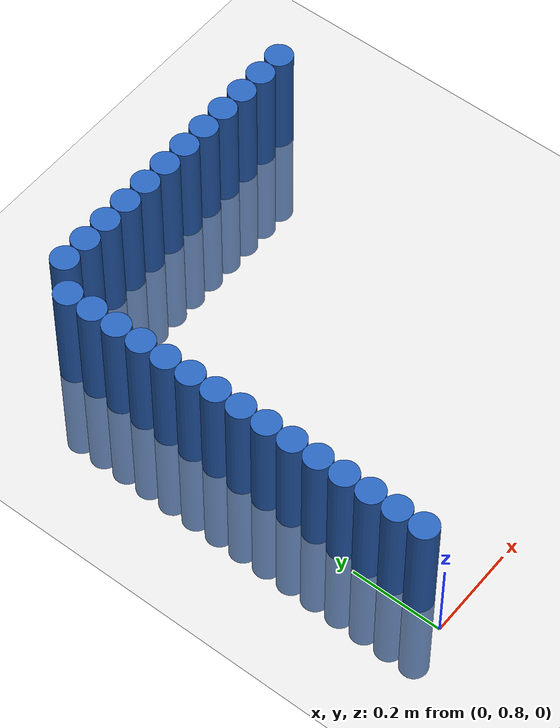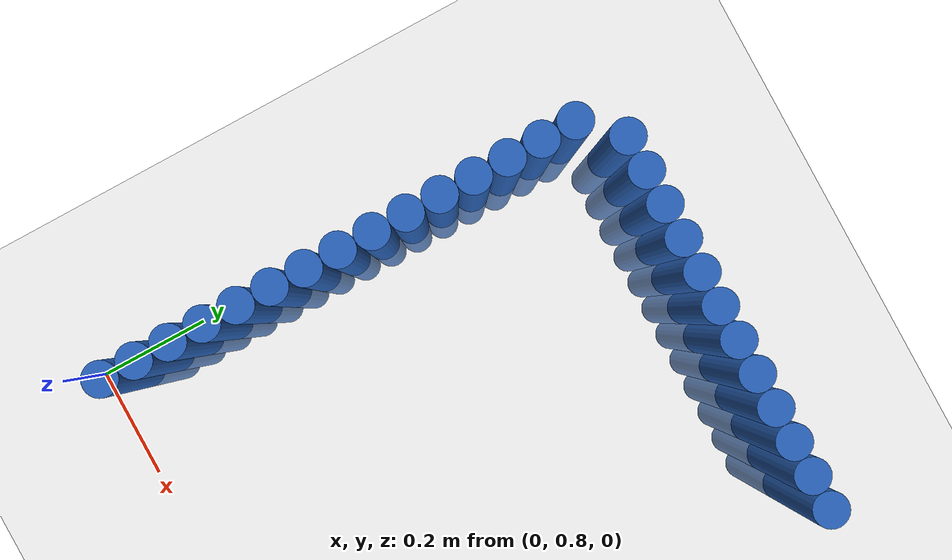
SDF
<sdf version="1.6">
 <world name="default">
  <model name="ground_plane">
   <static>1</static>
   <link name="link">
    <collision name="collision">
     <geometry><plane><normal>0 0 1</normal><size>100 100</size></plane></geometry>
     <surface><friction><ode><mu>100</mu><mu2>50</mu2></ode></friction></surface>
    </collision>
    <visual name="visual">
     <cast_shadows>0</cast_shadows>
     <geometry><plane><normal>0 0 1</normal><size>100 100</size></plane></geometry>
     <material>
      <script><uri>file://media/materials/scripts/gazebo.material</uri><name>Gazebo/Grey</name></script>
     </material>
    </visual>
   </link>
  </model>
  <model name="unit_cylinder_14">
   <static>1</static>
   <pose>0.030000 0.870000 0.000000 0.000000 0.000000 0.000000</pose>
   <link name="link">
    <inertial>
     <mass>1</mass>
     <inertia><ixx>0.145833</ixx><ixy>0</ixy><ixz>0</ixz><iyy>0.145833</iyy><iyz>0</iyz><izz>0.125</izz></inertia>
    </inertial>
    <collision name="collision">
     <geometry><cylinder><radius>0.030000</radius><length>0.5</length></cylinder></geometry>
    </collision>
    <visual name="visual">
     <geometry><cylinder><radius>0.030000</radius><length>0.5</length></cylinder></geometry>
     <material>
      <ambient>0.152000 0.379000 0.720000 1</ambient>
      <diffuse>0.152000 0.379000 0.720000 1</diffuse>
     </material>
     <material>
      <script><name>Gazebo/Grey</name><uri>file://media/materials/scripts/gazebo.material</uri></script>
     </material>
    </visual>
   </link>
  </model>
  <model name="unit_cylinder_15">
   <static>1</static>
   <pose>0.030000 0.930000 0.000000 0.000000 0.000000 0.000000</pose>
   <link name="link">
    <inertial>
     <mass>1</mass>
     <inertia><ixx>0.145833</ixx><ixy>0</ixy><ixz>0</ixz><iyy>0.145833</iyy><iyz>0</iyz><izz>0.125</izz></inertia>
    </inertial>
    <collision name="collision">
     <geometry><cylinder><radius>0.030000</radius><length>0.5</length></cylinder></geometry>
    </collision>
    <visual name="visual">
     <geometry><cylinder><radius>0.030000</radius><length>0.5</length></cylinder></geometry>
     <material>
      <ambient>0.152000 0.379000 0.720000 1</ambient>
      <diffuse>0.152000 0.379000 0.720000 1</diffuse>
     </material>
     <material>
      <script><name>Gazebo/Grey</name><uri>file://media/materials/scripts/gazebo.material</uri></script>
     </material>
    </visual>
   </link>
  </model>
  <model name="unit_cylinder_16">
   <static>1</static>
   <pose>0.030000 0.990000 0.000000 0.000000 0.000000 0.000000</pose>
   <link name="link">
    <inertial>
     <mass>1</mass>
     <inertia><ixx>0.145833</ixx><ixy>0</ixy><ixz>0</ixz><iyy>0.145833</iyy><iyz>0</iyz><izz>0.125</izz></inertia>
    </inertial>
    <collision name="collision">
     <geometry><cylinder><radius>0.030000</radius><length>0.5</length></cylinder></geometry>
    </collision>
    <visual name="visual">
     <geometry><cylinder><radius>0.030000</radius><length>0.5</length></cylinder></geometry>
     <material>
      <ambient>0.152000 0.379000 0.720000 1</ambient>
      <diffuse>0.152000 0.379000 0.720000 1</diffuse>
     </material>
     <material>
      <script><name>Gazebo/Grey</name><uri>file://media/materials/scripts/gazebo.material</uri></script>
     </material>
    </visual>
   </link>
  </model>
  <model name="unit_cylinder_17">
   <static>1</static>
   <pose>0.030000 1.050000 0.000000 0.000000 0.000000 0.000000</pose>
   <link name="link">
    <inertial>
     <mass>1</mass>
     <inertia><ixx>0.145833</ixx><ixy>0</ixy><ixz>0</ixz><iyy>0.145833</iyy><iyz>0</iyz><izz>0.125</izz></inertia>
    </inertial>
    <collision name="collision">
     <geometry><cylinder><radius>0.030000</radius><length>0.5</length></cylinder></geometry>
    </collision>
    <visual name="visual">
     <geometry><cylinder><radius>0.030000</radius><length>0.5</length></cylinder></geometry>
     <material>
      <ambient>0.152000 0.379000 0.720000 1</ambient>
      <diffuse>0.152000 0.379000 0.720000 1</diffuse>
     </material>
     <material>
      <script><name>Gazebo/Grey</name><uri>file://media/materials/scripts/gazebo.material</uri></script>
     </material>
    </visual>
   </link>
  </model>
  <model name="unit_cylinder_18">
   <static>1</static>
   <pose>0.030000 1.110000 0.000000 0.000000 0.000000 0.000000</pose>
   <link name="link">
    <inertial>
     <mass>1</mass>
     <inertia><ixx>0.145833</ixx><ixy>0</ixy><ixz>0</ixz><iyy>0.145833</iyy><iyz>0</iyz><izz>0.125</izz></inertia>
    </inertial>
    <collision name="collision">
     <geometry><cylinder><radius>0.030000</radius><length>0.5</length></cylinder></geometry>
    </collision>
    <visual name="visual">
     <geometry><cylinder><radius>0.030000</radius><length>0.5</length></cylinder></geometry>
     <material>
      <ambient>0.152000 0.379000 0.720000 1</ambient>
      <diffuse>0.152000 0.379000 0.720000 1</diffuse>
     </material>
     <material>
      <script><name>Gazebo/Grey</name><uri>file://media/materials/scripts/gazebo.material</uri></script>
     </material>
    </visual>
   </link>
  </model>
  <model name="unit_cylinder_19">
   <static>1</static>
   <pose>0.030000 1.170000 0.000000 0.000000 0.000000 0.000000</pose>
   <link name="link">
    <inertial>
     <mass>1</mass>
     <inertia><ixx>0.145833</ixx><ixy>0</ixy><ixz>0</ixz><iyy>0.145833</iyy><iyz>0</iyz><izz>0.125</izz></inertia>
    </inertial>
    <collision name="collision">
     <geometry><cylinder><radius>0.030000</radius><length>0.5</length></cylinder></geometry>
    </collision>
    <visual name="visual">
     <geometry><cylinder><radius>0.030000</radius><length>0.5</length></cylinder></geometry>
     <material>
      <ambient>0.152000 0.379000 0.720000 1</ambient>
      <diffuse>0.152000 0.379000 0.720000 1</diffuse>
     </material>
     <material>
      <script><name>Gazebo/Grey</name><uri>file://media/materials/scripts/gazebo.material</uri></script>
     </material>
    </visual>
   </link>
  </model>
  <model name="unit_cylinder_20">
   <static>1</static>
   <pose>0.030000 1.230000 0.000000 0.000000 0.000000 0.000000</pose>
   <link name="link">
    <inertial>
     <mass>1</mass>
     <inertia><ixx>0.145833</ixx><ixy>0</ixy><ixz>0</ixz><iyy>0.145833</iyy><iyz>0</iyz><izz>0.125</izz></inertia>
    </inertial>
    <collision name="collision">
     <geometry><cylinder><radius>0.030000</radius><length>0.5</length></cylinder></geometry>
    </collision>
    <visual name="visual">
     <geometry><cylinder><radius>0.030000</radius><length>0.5</length></cylinder></geometry>
     <material>
      <ambient>0.152000 0.379000 0.720000 1</ambient>
      <diffuse>0.152000 0.379000 0.720000 1</diffuse>
     </material>
     <material>
      <script><name>Gazebo/Grey</name><uri>file://media/materials/scripts/gazebo.material</uri></script>
     </material>
    </visual>
   </link>
  </model>
  <model name="unit_cylinder_21">
   <static>1</static>
   <pose>0.030000 1.290000 0.000000 0.000000 0.000000 0.000000</pose>
   <link name="link">
    <inertial>
     <mass>1</mass>
     <inertia><ixx>0.145833</ixx><ixy>0</ixy><ixz>0</ixz><iyy>0.145833</iyy><iyz>0</iyz><izz>0.125</izz></inertia>
    </inertial>
    <collision name="collision">
     <geometry><cylinder><radius>0.030000</radius><length>0.5</length></cylinder></geometry>
    </collision>
    <visual name="visual">
     <geometry><cylinder><radius>0.030000</radius><length>0.5</length></cylinder></geometry>
     <material>
      <ambient>0.152000 0.379000 0.720000 1</ambient>
      <diffuse>0.152000 0.379000 0.720000 1</diffuse>
     </material>
     <material>
      <script><name>Gazebo/Grey</name><uri>file://media/materials/scripts/gazebo.material</uri></script>
     </material>
    </visual>
   </link>
  </model>
  <model name="unit_cylinder_22">
   <static>1</static>
   <pose>0.030000 1.350000 0.000000 0.000000 0.000000 0.000000</pose>
   <link name="link">
    <inertial>
     <mass>1</mass>
     <inertia><ixx>0.145833</ixx><ixy>0</ixy><ixz>0</ixz><iyy>0.145833</iyy><iyz>0</iyz><izz>0.125</izz></inertia>
    </inertial>
    <collision name="collision">
     <geometry><cylinder><radius>0.030000</radius><length>0.5</length></cylinder></geometry>
    </collision>
    <visual name="visual">
     <geometry><cylinder><radius>0.030000</radius><length>0.5</length></cylinder></geometry>
     <material>
      <ambient>0.152000 0.379000 0.720000 1</ambient>
      <diffuse>0.152000 0.379000 0.720000 1</diffuse>
     </material>
     <material>
      <script><name>Gazebo/Grey</name><uri>file://media/materials/scripts/gazebo.material</uri></script>
     </material>
    </visual>
   </link>
  </model>
  <model name="unit_cylinder_23">
   <static>1</static>
   <pose>0.030000 1.410000 0.000000 0.000000 0.000000 0.000000</pose>
   <link name="link">
    <inertial>
     <mass>1</mass>
     <inertia><ixx>0.145833</ixx><ixy>0</ixy><ixz>0</ixz><iyy>0.145833</iyy><iyz>0</iyz><izz>0.125</izz></inertia>
    </inertial>
    <collision name="collision">
     <geometry><cylinder><radius>0.030000</radius><length>0.5</length></cylinder></geometry>
    </collision>
    <visual name="visual">
     <geometry><cylinder><radius>0.030000</radius><length>0.5</length></cylinder></geometry>
     <material>
      <ambient>0.152000 0.379000 0.720000 1</ambient>
      <diffuse>0.152000 0.379000 0.720000 1</diffuse>
     </material>
     <material>
      <script><name>Gazebo/Grey</name><uri>file://media/materials/scripts/gazebo.material</uri></script>
     </material>
    </visual>
   </link>
  </model>
  <model name="unit_cylinder_24">
   <static>1</static>
   <pose>0.030000 1.470000 0.000000 0.000000 0.000000 0.000000</pose>
   <link name="link">
    <inertial>
     <mass>1</mass>
     <inertia><ixx>0.145833</ixx><ixy>0</ixy><ixz>0</ixz><iyy>0.145833</iyy><iyz>0</iyz><izz>0.125</izz></inertia>
    </inertial>
    <collision name="collision">
     <geometry><cylinder><radius>0.030000</radius><length>0.5</length></cylinder></geometry>
    </collision>
    <visual name="visual">
     <geometry><cylinder><radius>0.030000</radius><length>0.5</length></cylinder></geometry>
     <material>
      <ambient>0.152000 0.379000 0.720000 1</ambient>
      <diffuse>0.152000 0.379000 0.720000 1</diffuse>
     </material>
     <material>
      <script><name>Gazebo/Grey</name><uri>file://media/materials/scripts/gazebo.material</uri></script>
     </material>
    </visual>
   </link>
  </model>
  <model name="unit_cylinder_25">
   <static>1</static>
   <pose>0.030000 1.530000 0.000000 0.000000 0.000000 0.000000</pose>
   <link name="link">
    <inertial>
     <mass>1</mass>
     <inertia><ixx>0.145833</ixx><ixy>0</ixy><ixz>0</ixz><iyy>0.145833</iyy><iyz>0</iyz><izz>0.125</izz></inertia>
    </inertial>
    <collision name="collision">
     <geometry><cylinder><radius>0.030000</radius><length>0.5</length></cylinder></geometry>
    </collision>
    <visual name="visual">
     <geometry><cylinder><radius>0.030000</radius><length>0.5</length></cylinder></geometry>
     <material>
      <ambient>0.152000 0.379000 0.720000 1</ambient>
      <diffuse>0.152000 0.379000 0.720000 1</diffuse>
     </material>
     <material>
      <script><name>Gazebo/Grey</name><uri>file://media/materials/scripts/gazebo.material</uri></script>
     </material>
    </visual>
   </link>
  </model>
  <model name="unit_cylinder_26">
   <static>1</static>
   <pose>0.030000 1.590000 0.000000 0.000000 0.000000 0.000000</pose>
   <link name="link">
    <inertial>
     <mass>1</mass>
     <inertia><ixx>0.145833</ixx><ixy>0</ixy><ixz>0</ixz><iyy>0.145833</iyy><iyz>0</iyz><izz>0.125</izz></inertia>
    </inertial>
    <collision name="collision">
     <geometry><cylinder><radius>0.030000</radius><length>0.5</length></cylinder></geometry>
    </collision>
    <visual name="visual">
     <geometry><cylinder><radius>0.030000</radius><length>0.5</length></cylinder></geometry>
     <material>
      <ambient>0.152000 0.379000 0.720000 1</ambient>
      <diffuse>0.152000 0.379000 0.720000 1</diffuse>
     </material>
     <material>
      <script><name>Gazebo/Grey</name><uri>file://media/materials/scripts/gazebo.material</uri></script>
     </material>
    </visual>
   </link>
  </model>
  <model name="unit_cylinder_27">
   <static>1</static>
   <pose>0.030000 1.650000 0.000000 0.000000 0.000000 0.000000</pose>
   <link name="link">
    <inertial>
     <mass>1</mass>
     <inertia><ixx>0.145833</ixx><ixy>0</ixy><ixz>0</ixz><iyy>0.145833</iyy><iyz>0</iyz><izz>0.125</izz></inertia>
    </inertial>
    <collision name="collision">
     <geometry><cylinder><radius>0.030000</radius><length>0.5</length></cylinder></geometry>
    </collision>
    <visual name="visual">
     <geometry><cylinder><radius>0.030000</radius><length>0.5</length></cylinder></geometry>
     <material>
      <ambient>0.152000 0.379000 0.720000 1</ambient>
      <diffuse>0.152000 0.379000 0.720000 1</diffuse>
     </material>
     <material>
      <script><name>Gazebo/Grey</name><uri>file://media/materials/scripts/gazebo.material</uri></script>
     </material>
    </visual>
   </link>
  </model>
  <model name="unit_cylinder_28">
   <static>1</static>
   <pose>0.030000 1.710000 0.000000 0.000000 0.000000 0.000000</pose>
   <link name="link">
    <inertial>
     <mass>1</mass>
     <inertia><ixx>0.145833</ixx><ixy>0</ixy><ixz>0</ixz><iyy>0.145833</iyy><iyz>0</iyz><izz>0.125</izz></inertia>
    </inertial>
    <collision name="collision">
     <geometry><cylinder><radius>0.030000</radius><length>0.5</length></cylinder></geometry>
    </collision>
    <visual name="visual">
     <geometry><cylinder><radius>0.030000</radius><length>0.5</length></cylinder></geometry>
     <material>
      <ambient>0.152000 0.379000 0.720000 1</ambient>
      <diffuse>0.152000 0.379000 0.720000 1</diffuse>
     </material>
     <material>
      <script><name>Gazebo/Grey</name><uri>file://media/materials/scripts/gazebo.material</uri></script>
     </material>
    </visual>
   </link>
  </model>
  <model name="unit_cylinder_30">
   <static>1</static>
   <pose>0.090000 1.770000 0.000000 0.000000 0.000000 0.000000</pose>
   <link name="link">
    <inertial>
     <mass>1</mass>
     <inertia><ixx>0.145833</ixx><ixy>0</ixy><ixz>0</ixz><iyy>0.145833</iyy><iyz>0</iyz><izz>0.125</izz></inertia>
    </inertial>
    <collision name="collision">
     <geometry><cylinder><radius>0.030000</radius><length>0.5</length></cylinder></geometry>
    </collision>
    <visual name="visual">
     <geometry><cylinder><radius>0.030000</radius><length>0.5</length></cylinder></geometry>
     <material>
      <ambient>0.152000 0.379000 0.720000 1</ambient>
      <diffuse>0.152000 0.379000 0.720000 1</diffuse>
     </material>
     <material>
      <script><name>Gazebo/Grey</name><uri>file://media/materials/scripts/gazebo.material</uri></script>
     </material>
    </visual>
   </link>
  </model>
  <model name="unit_cylinder_32">
   <static>1</static>
   <pose>0.150000 1.770000 0.000000 0.000000 0.000000 0.000000</pose>
   <link name="link">
    <inertial>
     <mass>1</mass>
     <inertia><ixx>0.145833</ixx><ixy>0</ixy><ixz>0</ixz><iyy>0.145833</iyy><iyz>0</iyz><izz>0.125</izz></inertia>
    </inertial>
    <collision name="collision">
     <geometry><cylinder><radius>0.030000</radius><length>0.5</length></cylinder></geometry>
    </collision>
    <visual name="visual">
     <geometry><cylinder><radius>0.030000</radius><length>0.5</length></cylinder></geometry>
     <material>
      <ambient>0.152000 0.379000 0.720000 1</ambient>
      <diffuse>0.152000 0.379000 0.720000 1</diffuse>
     </material>
     <material>
      <script><name>Gazebo/Grey</name><uri>file://media/materials/scripts/gazebo.material</uri></script>
     </material>
    </visual>
   </link>
  </model>
  <model name="unit_cylinder_34">
   <static>1</static>
   <pose>0.210000 1.770000 0.000000 0.000000 0.000000 0.000000</pose>
   <link name="link">
    <inertial>
     <mass>1</mass>
     <inertia><ixx>0.145833</ixx><ixy>0</ixy><ixz>0</ixz><iyy>0.145833</iyy><iyz>0</iyz><izz>0.125</izz></inertia>
    </inertial>
    <collision name="collision">
     <geometry><cylinder><radius>0.030000</radius><length>0.5</length></cylinder></geometry>
    </collision>
    <visual name="visual">
     <geometry><cylinder><radius>0.030000</radius><length>0.5</length></cylinder></geometry>
     <material>
      <ambient>0.152000 0.379000 0.720000 1</ambient>
      <diffuse>0.152000 0.379000 0.720000 1</diffuse>
     </material>
     <material>
      <script><name>Gazebo/Grey</name><uri>file://media/materials/scripts/gazebo.material</uri></script>
     </material>
    </visual>
   </link>
  </model>
  <model name="unit_cylinder_36">
   <static>1</static>
   <pose>0.270000 1.770000 0.000000 0.000000 0.000000 0.000000</pose>
   <link name="link">
    <inertial>
     <mass>1</mass>
     <inertia><ixx>0.145833</ixx><ixy>0</ixy><ixz>0</ixz><iyy>0.145833</iyy><iyz>0</iyz><izz>0.125</izz></inertia>
    </inertial>
    <collision name="collision">
     <geometry><cylinder><radius>0.030000</radius><length>0.5</length></cylinder></geometry>
    </collision>
    <visual name="visual">
     <geometry><cylinder><radius>0.030000</radius><length>0.5</length></cylinder></geometry>
     <material>
      <ambient>0.152000 0.379000 0.720000 1</ambient>
      <diffuse>0.152000 0.379000 0.720000 1</diffuse>
     </material>
     <material>
      <script><name>Gazebo/Grey</name><uri>file://media/materials/scripts/gazebo.material</uri></script>
     </material>
    </visual>
   </link>
  </model>
  <model name="unit_cylinder_38">
   <static>1</static>
   <pose>0.330000 1.770000 0.000000 0.000000 0.000000 0.000000</pose>
   <link name="link">
    <inertial>
     <mass>1</mass>
     <inertia><ixx>0.145833</ixx><ixy>0</ixy><ixz>0</ixz><iyy>0.145833</iyy><iyz>0</iyz><izz>0.125</izz></inertia>
    </inertial>
    <collision name="collision">
     <geometry><cylinder><radius>0.030000</radius><length>0.5</length></cylinder></geometry>
    </collision>
    <visual name="visual">
     <geometry><cylinder><radius>0.030000</radius><length>0.5</length></cylinder></geometry>
     <material>
      <ambient>0.152000 0.379000 0.720000 1</ambient>
      <diffuse>0.152000 0.379000 0.720000 1</diffuse>
     </material>
     <material>
      <script><name>Gazebo/Grey</name><uri>file://media/materials/scripts/gazebo.material</uri></script>
     </material>
    </visual>
   </link>
  </model>
  <model name="unit_cylinder_40">
   <static>1</static>
   <pose>0.390000 1.770000 0.000000 0.000000 0.000000 0.000000</pose>
   <link name="link">
    <inertial>
     <mass>1</mass>
     <inertia><ixx>0.145833</ixx><ixy>0</ixy><ixz>0</ixz><iyy>0.145833</iyy><iyz>0</iyz><izz>0.125</izz></inertia>
    </inertial>
    <collision name="collision">
     <geometry><cylinder><radius>0.030000</radius><length>0.5</length></cylinder></geometry>
    </collision>
    <visual name="visual">
     <geometry><cylinder><radius>0.030000</radius><length>0.5</length></cylinder></geometry>
     <material>
      <ambient>0.152000 0.379000 0.720000 1</ambient>
      <diffuse>0.152000 0.379000 0.720000 1</diffuse>
     </material>
     <material>
      <script><name>Gazebo/Grey</name><uri>file://media/materials/scripts/gazebo.material</uri></script>
     </material>
    </visual>
   </link>
  </model>
  <model name="unit_cylinder_42">
   <static>1</static>
   <pose>0.450000 1.770000 0.000000 0.000000 0.000000 0.000000</pose>
   <link name="link">
    <inertial>
     <mass>1</mass>
     <inertia><ixx>0.145833</ixx><ixy>0</ixy><ixz>0</ixz><iyy>0.145833</iyy><iyz>0</iyz><izz>0.125</izz></inertia>
    </inertial>
    <collision name="collision">
     <geometry><cylinder><radius>0.030000</radius><length>0.5</length></cylinder></geometry>
    </collision>
    <visual name="visual">
     <geometry><cylinder><radius>0.030000</radius><length>0.5</length></cylinder></geometry>
     <material>
      <ambient>0.152000 0.379000 0.720000 1</ambient>
      <diffuse>0.152000 0.379000 0.720000 1</diffuse>
     </material>
     <material>
      <script><name>Gazebo/Grey</name><uri>file://media/materials/scripts/gazebo.material</uri></script>
     </material>
    </visual>
   </link>
  </model>
  <model name="unit_cylinder_44">
   <static>1</static>
   <pose>0.510000 1.770000 0.000000 0.000000 0.000000 0.000000</pose>
   <link name="link">
    <inertial>
     <mass>1</mass>
     <inertia><ixx>0.145833</ixx><ixy>0</ixy><ixz>0</ixz><iyy>0.145833</iyy><iyz>0</iyz><izz>0.125</izz></inertia>
    </inertial>
    <collision name="collision">
     <geometry><cylinder><radius>0.030000</radius><length>0.5</length></cylinder></geometry>
    </collision>
    <visual name="visual">
     <geometry><cylinder><radius>0.030000</radius><length>0.5</length></cylinder></geometry>
     <material>
      <ambient>0.152000 0.379000 0.720000 1</ambient>
      <diffuse>0.152000 0.379000 0.720000 1</diffuse>
     </material>
     <material>
      <script><name>Gazebo/Grey</name><uri>file://media/materials/scripts/gazebo.material</uri></script>
     </material>
    </visual>
   </link>
  </model>
  <model name="unit_cylinder_46">
   <static>1</static>
   <pose>0.570000 1.770000 0.000000 0.000000 0.000000 0.000000</pose>
   <link name="link">
    <inertial>
     <mass>1</mass>
     <inertia><ixx>0.145833</ixx><ixy>0</ixy><ixz>0</ixz><iyy>0.145833</iyy><iyz>0</iyz><izz>0.125</izz></inertia>
    </inertial>
    <collision name="collision">
     <geometry><cylinder><radius>0.030000</radius><length>0.5</length></cylinder></geometry>
    </collision>
    <visual name="visual">
     <geometry><cylinder><radius>0.030000</radius><length>0.5</length></cylinder></geometry>
     <material>
      <ambient>0.152000 0.379000 0.720000 1</ambient>
      <diffuse>0.152000 0.379000 0.720000 1</diffuse>
     </material>
     <material>
      <script><name>Gazebo/Grey</name><uri>file://media/materials/scripts/gazebo.material</uri></script>
     </material>
    </visual>
   </link>
  </model>
  <model name="unit_cylinder_48">
   <static>1</static>
   <pose>0.630000 1.770000 0.000000 0.000000 0.000000 0.000000</pose>
   <link name="link">
    <inertial>
     <mass>1</mass>
     <inertia><ixx>0.145833</ixx><ixy>0</ixy><ixz>0</ixz><iyy>0.145833</iyy><iyz>0</iyz><izz>0.125</izz></inertia>
    </inertial>
    <collision name="collision">
     <geometry><cylinder><radius>0.030000</radius><length>0.5</length></cylinder></geometry>
    </collision>
    <visual name="visual">
     <geometry><cylinder><radius>0.030000</radius><length>0.5</length></cylinder></geometry>
     <material>
      <ambient>0.152000 0.379000 0.720000 1</ambient>
      <diffuse>0.152000 0.379000 0.720000 1</diffuse>
     </material>
     <material>
      <script><name>Gazebo/Grey</name><uri>file://media/materials/scripts/gazebo.material</uri></script>
     </material>
    </visual>
   </link>
  </model>
  <model name="unit_cylinder_50">
   <static>1</static>
   <pose>0.690000 1.770000 0.000000 0.000000 0.000000 0.000000</pose>
   <link name="link">
    <inertial>
     <mass>1</mass>
     <inertia><ixx>0.145833</ixx><ixy>0</ixy><ixz>0</ixz><iyy>0.145833</iyy><iyz>0</iyz><izz>0.125</izz></inertia>
    </inertial>
    <collision name="collision">
     <geometry><cylinder><radius>0.030000</radius><length>0.5</length></cylinder></geometry>
    </collision>
    <visual name="visual">
     <geometry><cylinder><radius>0.030000</radius><length>0.5</length></cylinder></geometry>
     <material>
      <ambient>0.152000 0.379000 0.720000 1</ambient>
      <diffuse>0.152000 0.379000 0.720000 1</diffuse>
     </material>
     <material>
      <script><name>Gazebo/Grey</name><uri>file://media/materials/scripts/gazebo.material</uri></script>
     </material>
    </visual>
   </link>
  </model>
  <model name="unit_cylinder_52">
   <static>1</static>
   <pose>0.750000 1.770000 0.000000 0.000000 0.000000 0.000000</pose>
   <link name="link">
    <inertial>
     <mass>1</mass>
     <inertia><ixx>0.145833</ixx><ixy>0</ixy><ixz>0</ixz><iyy>0.145833</iyy><iyz>0</iyz><izz>0.125</izz></inertia>
    </inertial>
    <collision name="collision">
     <geometry><cylinder><radius>0.030000</radius><length>0.5</length></cylinder></geometry>
    </collision>
    <visual name="visual">
     <geometry><cylinder><radius>0.030000</radius><length>0.5</length></cylinder></geometry>
     <material>
      <ambient>0.152000 0.379000 0.720000 1</ambient>
      <diffuse>0.152000 0.379000 0.720000 1</diffuse>
     </material>
     <material>
      <script><name>Gazebo/Grey</name><uri>file://media/materials/scripts/gazebo.material</uri></script>
     </material>
    </visual>
   </link>
  </model>
 </world>
</sdf>
